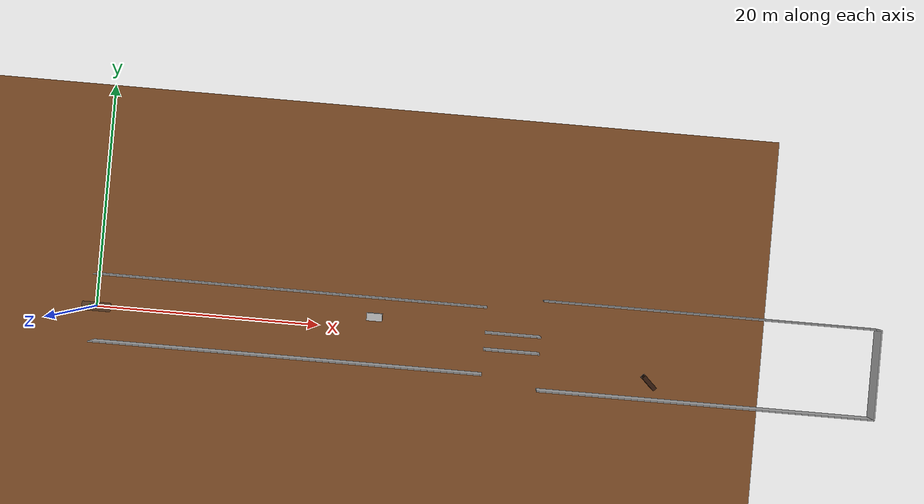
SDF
<?xml version="1.0" ?>
<sdf version="1.8">
  <world name="dual_room_office_high_speed">
    <physics name="1ms" type="ignored">
      <max_step_size>0.001</max_step_size>
      <real_time_factor>1.0</real_time_factor>
    </physics>

    <plugin filename="gz-sim-physics-system" name="gz::sim::systems::Physics"/>
    <plugin filename="gz-sim-user-commands-system" name="gz::sim::systems::UserCommands"/>
    <plugin filename="gz-sim-scene-broadcaster-system" name="gz::sim::systems::SceneBroadcaster"/>
    <plugin filename="gz-sim-sensors-system" name="gz::sim::systems::Sensors">
      <render_engine>ogre2</render_engine>
    </plugin>

    <light type="directional" name="sun">
      <cast_shadows>true</cast_shadows>
      <pose>0 0 15 0 0 0</pose>
      <diffuse>1.0 1.0 1.0 1</diffuse>
      <direction>-0.5 0.1 -0.9</direction>
    </light>

    <model name="office_floor">
      <static>true</static>
      <link name="link">
        <collision name="c"><geometry><plane><normal>0 0 1</normal><size>120 40</size></plane></geometry></collision>
        <visual name="v">
          <geometry><plane><normal>0 0 1</normal><size>120 40</size></plane></geometry>
          <material><ambient>0.4 0.25 0.1 1</ambient><diffuse>0.5 0.3 0.15 1</diffuse></material>
        </visual>
      </link>
    </model>

    <model name="launch_tube">
      <static>true</static>
      <pose>0 0 0.5 0 1.5708 0</pose>
      <link name="link">
        <visual name="v">
          <geometry><cylinder><radius>0.4</radius><length>2.5</length></cylinder></geometry>
          <material>
            <ambient>0.1 0.1 0.1 0.4</ambient>
            <diffuse>0.2 0.2 0.2 0.4</diffuse>
            <specular>0.8 0.8 0.8 1</specular>
          </material>
        </visual>
      </link>
    </model>

    <model name="building_layout">
      <static>true</static>
      <link name="walls">
        <visual name="r1_w1"><pose>17.5 3 1.5 0 0 0</pose><geometry><box><size>35 0.1 3</size></box></geometry></visual>
        <visual name="r1_w2"><pose>17.5 -3 1.5 0 0 0</pose><geometry><box><size>35 0.1 3</size></box></geometry></visual>

        <visual name="corr_w1"><pose>37.5 0.75 1.5 0 0 0</pose><geometry><box><size>5 0.1 3</size></box></geometry></visual>
        <visual name="corr_w2"><pose>37.5 -0.75 1.5 0 0 0</pose><geometry><box><size>5 0.1 3</size></box></geometry></visual>
        <collision name="corr_c1"><pose>37.5 0.75 1.5 0 0 0</pose><geometry><box><size>5 0.1 3</size></box></geometry></collision>
        <collision name="corr_c2"><pose>37.5 -0.75 1.5 0 0 0</pose><geometry><box><size>5 0.1 3</size></box></geometry></collision>

        <visual name="r2_w1"><pose>55 4 1.5 0 0 0</pose><geometry><box><size>30 0.1 3</size></box></geometry></visual>
        <visual name="r2_w2"><pose>55 -4 1.5 0 0 0</pose><geometry><box><size>30 0.1 3</size></box></geometry></visual>
        <visual name="back_wall"><pose>70 0 1.5 0 0 1.57</pose><geometry><box><size>8 0.1 3</size></box></geometry></visual>

        <collision name="r2_c1"><pose>55 4 1.5 0 0 0</pose><geometry><box><size>30 0.1 3</size></box></geometry></collision>
        <collision name="r2_c2"><pose>55 -4 1.5 0 0 0</pose><geometry><box><size>30 0.1 3</size></box></geometry></collision>
        <collision name="back_c"><pose>70 0 1.5 0 0 1.57</pose><geometry><box><size>8 0.1 3</size></box></geometry></collision>
      </link>
    </model>

    <model name="r1_desk"><static>true</static><pose>25.0 1.2 0.01 0 0 0</pose>
      <link name="l"><visual name="v"><pose>0 0 0.4 0 0 0</pose><geometry><box><size>1.4 0.7 0.8</size></box></geometry></visual>
      <collision name="c"><pose>0 0 0.4 0 0 0</pose><geometry><box><size>1.4 0.7 0.8</size></box></geometry></collision></link>
    </model>

    <model name="r2_bookshelf">
      <static>true</static>
      <pose>50.0 -2.5 0.01 0 0 0.8</pose>
      <link name="link">
        <visual name="frame"><pose>0 0 1.0 0 0 0</pose><geometry><box><size>0.4 1.5 2.0</size></box></geometry><material><diffuse>0.2 0.1 0.05 1</diffuse></material></visual>
        <collision name="c"><pose>0 0 1.0 0 0 0</pose><geometry><box><size>0.4 1.5 2.0</size></box></geometry></collision>
      </link>
    </model>

    <model name="drone">
      <pose>-0.5 0 0.5 0 0 0</pose>
      <link name="base_link">
        <visual name="visual"><geometry><box><size>0.3 0.3 0.1</size></box></geometry><material><ambient>0 1 0 1</ambient></material></visual>
        <sensor name="camera" type="camera">
          <pose>0.15 0 0 0 0.1 0</pose>
          <camera><horizontal_fov>1.2</horizontal_fov><image><width>640</width><height>480</height></image></camera>
          <always_on>1</always_on><update_rate>30</update_rate><topic>camera</topic>
        </sensor>
        <sensor name="lidar" type="gpu_lidar">
          <topic>/model/drone/device/lidar/scan</topic>
          <ray>
            <scan><horizontal><samples>360</samples></horizontal></scan>
            <range><min>0.1</min><max>30.0</max></range>
          </ray>
        </sensor>
      </link>

      <plugin filename="gz-sim-velocity-control-system" name="gz::sim::systems::VelocityControl">
        <link_name>base_link</link_name>
        <max_linear_acceleration>100.0</max_linear_acceleration>
        <max_angular_acceleration>50.0</max_angular_acceleration>
      </plugin>
    </model>
  </world>
</sdf>
